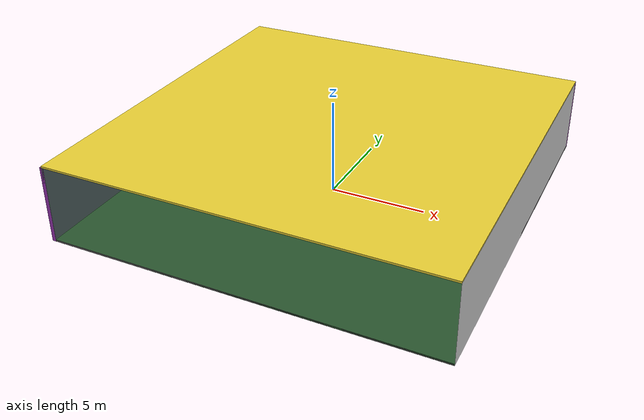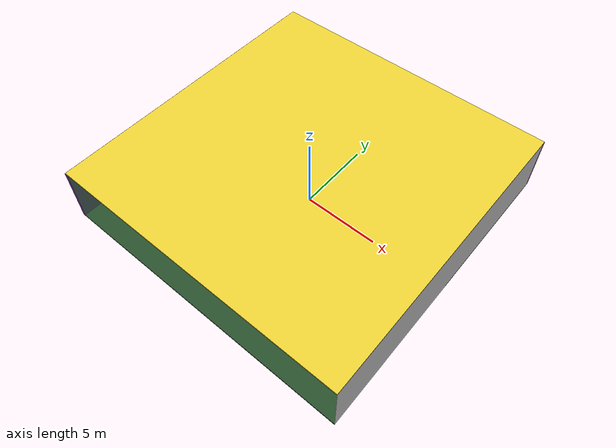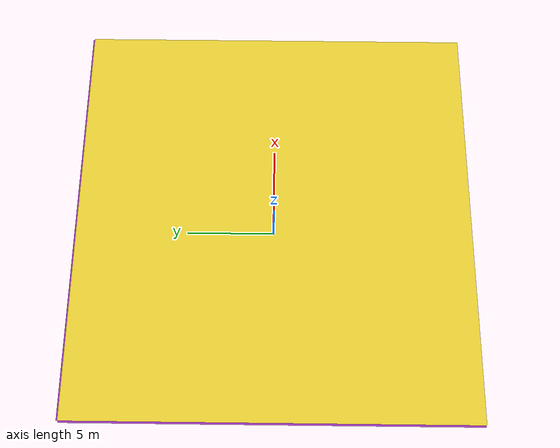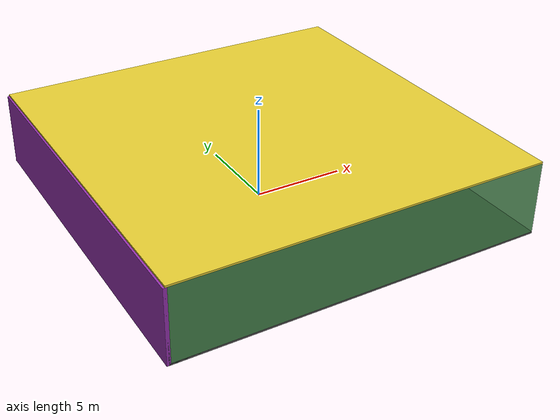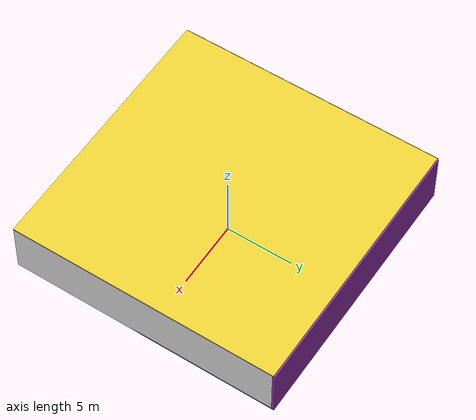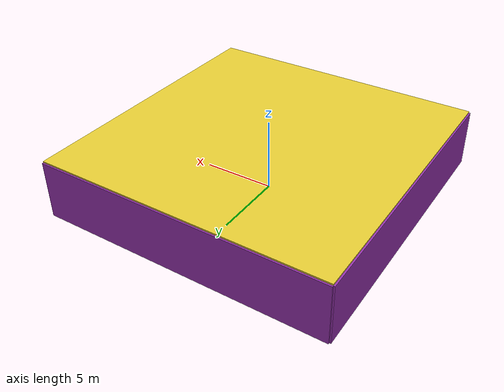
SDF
<sdf version="1.4">
 <world name="default">
  <physics type="ode">
   <max_step_size>0.001</max_step_size>
   <real_time_factor>1</real_time_factor>
   <real_time_update_rate>1000</real_time_update_rate>
   <gravity>0 0 -9.8</gravity>
  </physics>
  <scene><ambient>0.4 0.4 0.4 1</ambient><background>0.7 0.7 0.7 1</background><shadows>1</shadows></scene>
  <model name="Surrounding">
   <static>1</static>
   <link name="Ceiling">
    <collision name="Ceiling_Collision"><geometry><box><size>20 20 0.1</size></box></geometry></collision>
    <visual name="Ceiling_Visual">
     <geometry><box><size>20 20 0.1</size></box></geometry>
     <material>
      <script><uri>file://media/materials/scripts/gazebo.material</uri><name>Gazebo/ZincYellow</name></script>
     </material>
    </visual>
    <pose>0 0 4.05 0 0 0</pose>
   </link>
   <link name="Wall_South">
    <collision name="Wall_South_Collision">
     <geometry><box><size>20 0 4</size></box></geometry>
     <pose>0 0 2 0 -0 0</pose>
    </collision>
    <visual name="Wall_South_Visual">
     <pose>0 0 2 0 -0 0</pose>
     <geometry><box><size>20 0 4</size></box></geometry>
     <material>
      <script><uri>file://media/materials/scripts/gazebo.material</uri><name>Gazebo/GreenTransparent</name></script>
     </material>
    </visual>
    <velocity_decay><linear>0</linear><angular>0</angular></velocity_decay>
    <pose>0 -10 0 0 -0 0</pose>
   </link>
   <link name="Wall_East">
    <collision name="Wall_21_Collision">
     <geometry><box><size>20 0 4</size></box></geometry>
     <pose>0 0 2 0 -0 0</pose>
    </collision>
    <visual name="Wall_21_Visual">
     <pose>0 0 2 0 -0 0</pose>
     <geometry><box><size>20 0 4</size></box></geometry>
     <material>
      <script><uri>file://media/materials/scripts/gazebo.material</uri><name>Gazebo/WhiteGlow</name></script>
     </material>
    </visual>
    <velocity_decay><linear>0</linear><angular>0</angular></velocity_decay>
    <pose>10 0 0 0 -0 1.5708</pose>
   </link>
   <link name="Wall_North">
    <collision name="Wall_22_Collision">
     <geometry><box><size>20 0.2 4</size></box></geometry>
     <pose>0 0 2 0 -0 0</pose>
    </collision>
    <visual name="Wall_22_Visual">
     <pose>0 0 2 0 -0 0</pose>
     <geometry><box><size>20 0.2 4</size></box></geometry>
     <material>
      <script><uri>file://media/materials/scripts/gazebo.material</uri><name>Gazebo/PurpleGlow</name></script>
     </material>
    </visual>
    <velocity_decay><linear>0</linear><angular>0</angular></velocity_decay>
    <pose>0 10 0 0 -0 0</pose>
   </link>
   <link name="Wall_West">
    <collision name="Wall_23_Collision">
     <geometry><box><size>20 0.2 4</size></box></geometry>
     <pose>0 0 2 0 -0 0</pose>
    </collision>
    <visual name="Wall_23_Visual">
     <pose>0 0 2 0 -0 0</pose>
     <geometry><box><size>20 0.2 4</size></box></geometry>
     <material>
      <script><uri>file://media/materials/scripts/gazebo.material</uri><name>Gazebo/Purple</name></script>
     </material>
    </visual>
    <velocity_decay><linear>0</linear><angular>0</angular></velocity_decay>
    <pose>-10 0 0 0 0 -1.5708</pose>
   </link>
   <link name="Ground_link">
    <collision name="collision">
     <pose>0 0 .05 0 -0 0</pose>
     <geometry><box><size>20 20 0.1</size></box></geometry>
    </collision>
    <visual name="visual">
     <pose>0 0 .05 0 -0 0</pose>
     <geometry><box><size>20 20 0.1</size></box></geometry>
     <material>
      <script><uri>file://media/materials/scripts/gazebo.material</uri><name>Gazebo/Road</name></script>
     </material>
    </visual>
   </link>
   <static>1</static>
  </model>
  <spherical_coordinates>
   <surface_model>EARTH_WGS84</surface_model>
   <latitude_deg>0</latitude_deg>
   <longitude_deg>0</longitude_deg>
   <elevation>0</elevation>
   <heading_deg>0</heading_deg>
  </spherical_coordinates>
  <light name="lightball_0" type="diffuse">
   <diffuse>0.8 0.8 0.8 1</diffuse>
   <specular>0.2 0.2 0.2 1</specular>
   <attenuation>
    <range>100</range>
    <constant>0.7</constant>
    <linear>0.01</linear>
    <quadratic>0.001</quadratic>
   </attenuation>
   <direction>-0.5 0.1 -0.9</direction>
   <pose>-6.25433807662 -6.25753176828 0.636501359311 0 0 0</pose>
  </light>
  <light name="lightball_1" type="diffuse">
   <diffuse>0.8 0.8 0.8 1</diffuse>
   <specular>0.2 0.2 0.2 1</specular>
   <attenuation>
    <range>100</range>
    <constant>0.7</constant>
    <linear>0.01</linear>
    <quadratic>0.001</quadratic>
   </attenuation>
   <direction>-0.5 0.1 -0.9</direction>
   <pose>-9.99496470921 -4.78072355647 2.22445791177 0 0 0</pose>
  </light>
  <light name="lightball_2" type="diffuse">
   <diffuse>0.8 0.8 0.8 1</diffuse>
   <specular>0.2 0.2 0.2 1</specular>
   <attenuation>
    <range>100</range>
    <constant>0.7</constant>
    <linear>0.01</linear>
    <quadratic>0.001</quadratic>
   </attenuation>
   <direction>-0.5 0.1 -0.9</direction>
   <pose>3.60285650029 -0.934249488579 1.97295977121 0 0 0</pose>
  </light>
  <light name="lightball_3" type="diffuse">
   <diffuse>0.8 0.8 0.8 1</diffuse>
   <specular>0.2 0.2 0.2 1</specular>
   <attenuation>
    <range>100</range>
    <constant>0.7</constant>
    <linear>0.01</linear>
    <quadratic>0.001</quadratic>
   </attenuation>
   <direction>-0.5 0.1 -0.9</direction>
   <pose>4.18847567463 6.9611093428 1.99823473967 0 0 0</pose>
  </light>
  <light name="lightball_4" type="diffuse">
   <diffuse>0.8 0.8 0.8 1</diffuse>
   <specular>0.2 0.2 0.2 1</specular>
   <attenuation>
    <range>100</range>
    <constant>0.7</constant>
    <linear>0.01</linear>
    <quadratic>0.001</quadratic>
   </attenuation>
   <direction>-0.5 0.1 -0.9</direction>
   <pose>-8.21058104041 -4.28947113665 3.32392596779 0 0 0</pose>
  </light>
  <light name="lightball_5" type="diffuse">
   <diffuse>0.8 0.8 0.8 1</diffuse>
   <specular>0.2 0.2 0.2 1</specular>
   <attenuation>
    <range>100</range>
    <constant>0.7</constant>
    <linear>0.01</linear>
    <quadratic>0.001</quadratic>
   </attenuation>
   <direction>-0.5 0.1 -0.9</direction>
   <pose>-6.0658470989 -9.52004025673 2.61829722733 0 0 0</pose>
  </light>
  <include>
   <uri>model://construction_cone</uri>
   <pose>-7.11692134142 2.04396947606 0 0 0 3.0571530507</pose>
  </include>
  <include>
   <uri>model://textured_shapes</uri>
   <pose>0.959076312177 7.89561924067 0 0 0 1.64183876772</pose>
  </include>
  <include>
   <uri>model://robocup_3Dsim_goal</uri>
   <pose>7.59353130099 -4.42428617568 0 0 0 2.04345491446</pose>
  </include>
 </world>
</sdf>

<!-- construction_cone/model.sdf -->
<sdf version="1.5">
  <model name="Construction Cone">
    <link name="link">
      <collision name="collision">
        <geometry>
          <mesh>
            <scale>10 10 10</scale>
            <uri>file://isr-testbed/construction_cone/meshes/construction_cone.dae</uri>
          </mesh>
        </geometry>
      </collision>
      <visual name="visual">
        <geometry>
          <mesh>
            <scale>10 10 10</scale>
            <uri>file://isr-testbed/construction_cone/meshes/construction_cone.dae</uri>
          </mesh>
        </geometry>
      </visual>
    </link>
  </model>
</sdf>

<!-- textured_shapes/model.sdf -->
<sdf version="1.6">
  <model name="textured_shapes">
    <pose>0 0 0.5 0 0 0</pose>
    <link name="box">
      <pose>0 -1.5 0 0 0 0</pose>
      <collision name="collision">
        <geometry>
          <box>
            <size>1 1 1</size>
          </box>
        </geometry>
      </collision>
      <visual name="visual">
        <geometry>
          <box>
            <size>1 1 1</size>
          </box>
        </geometry>
        <material>
          <script>
            <uri>model://../model_source/models/textured_shapes/materials/scripts</uri>
            <uri>model://../model_source/models/textured_shapes/materials/textures</uri>
            <name>TexturedShape/Squares</name>
          </script>
        </material>
      </visual>
    </link>
    <link name="sphere">
      <collision name="collision">
        <geometry>
          <sphere>
            <radius>0.5</radius>
          </sphere>
        </geometry>
      </collision>
      <visual name="visual">
        <geometry>
          <sphere>
            <radius>0.5</radius>
          </sphere>
        </geometry>
        <material>
          <script>
            <uri>model://../model_source/models/textured_shapes/materials/scripts</uri>
            <uri>model://../model_source/models/textured_shapes/materials/textures</uri>
            <name>TexturedShape/Squares</name>
          </script>
        </material>
      </visual>
    </link>
    <link name="cylinder">
      <pose>0 1.5 0 0 0 0</pose>
      <collision name="collision">
        <geometry>
          <cylinder>
            <radius>0.5</radius>
            <length>1</length>
          </cylinder>
        </geometry>
      </collision>
      <visual name="visual">
        <geometry>
          <cylinder>
            <radius>0.5</radius>
            <length>1</length>
          </cylinder>
        </geometry>
        <material>
          <script>
            <uri>model://../model_source/models/textured_shapes/materials/scripts</uri>
            <uri>model://../model_source/models/textured_shapes/materials/textures</uri>
            <name>TexturedShape/Squares</name>
          </script>
        </material>
      </visual>
    </link>
  </model>
</sdf>

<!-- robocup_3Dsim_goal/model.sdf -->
<sdf version="1.5">
  <model name="robocup_3d_goal">
    <static>true</static>
    <link name="left_post">
      <pose>0 1.05 0.45 0 0 0</pose>
      <collision name="collision">
        <geometry>
          <cylinder>
            <radius>0.05</radius>
            <length>0.9</length>
          </cylinder>
        </geometry>
      </collision>
      <visual name="visual">
        <geometry>
          <cylinder>
            <radius>0.05</radius>
            <length>0.9</length>
          </cylinder>
        </geometry>
        <material>
          <script>
            <uri>file://media/materials/scripts/gazebo.material</uri>
            <name>Gazebo/ZincYellow</name>
          </script>
        </material>
      </visual>
    </link>
    <link name="left_support_horiz_lower">
      <pose>0.30 1.05 0.01 0 0 0</pose>
      <collision name="collision">
        <geometry>
          <box>
            <size>0.50 0.02 0.02</size>
          </box>
        </geometry>
      </collision>
      <visual name="visual">
        <geometry>
          <box>
            <size>0.50 0.02 0.02</size>
          </box>
        </geometry>
        <material>
          <script>
            <uri>file://media/materials/scripts/gazebo.material</uri>
            <name>Gazebo/White</name>
          </script>
        </material>
      </visual>
    </link>
    <link name="left_support_horiz_upper">
      <pose>0.30 1.05 0.79 0 0 0</pose>
      <collision name="collision">
        <geometry>
          <box>
            <size>0.50 0.02 0.02</size>
          </box>
        </geometry>
      </collision>
      <visual name="visual">
        <geometry>
          <box>
            <size>0.50 0.02 0.02</size>
          </box>
        </geometry>
        <material>
          <script>
            <uri>file://media/materials/scripts/gazebo.material</uri>
            <name>Gazebo/White</name>
          </script>
        </material>
      </visual>
    </link>
    <link name="left_support_vertical">
      <pose>0.56 1.05 0.4 0 1.5708 0</pose>
      <collision name="collision">
        <geometry>
          <box>
            <size>0.80 0.02 0.02</size>
          </box>
        </geometry>
      </collision>
      <visual name="visual">
        <geometry>
          <box>
            <size>0.80 0.02 0.02</size>
          </box>
        </geometry>
        <material>
          <script>
            <uri>file://media/materials/scripts/gazebo.material</uri>
            <name>Gazebo/White</name>
          </script>
        </material>
      </visual>
    </link>
    <link name="right_support_horiz_lower">
      <pose>0.30 -1.05 0.01 0 0 0</pose>
      <collision name="collision">
        <geometry>
          <box>
            <size>0.50 0.02 0.02</size>
          </box>
        </geometry>
      </collision>
      <visual name="visual">
        <geometry>
          <box>
            <size>0.50 0.02 0.02</size>
          </box>
        </geometry>
        <material>
          <script>
            <uri>file://media/materials/scripts/gazebo.material</uri>
            <name>Gazebo/White</name>
          </script>
        </material>
      </visual>
    </link>
    <link name="right_support_horiz_upper">
      <pose>0.30 -1.05 0.79 0 0 0</pose>
      <collision name="collision">
        <geometry>
          <box>
            <size>0.50 0.02 0.02</size>
          </box>
        </geometry>
      </collision>
      <visual name="visual">
        <geometry>
          <box>
            <size>0.50 0.02 0.02</size>
          </box>
        </geometry>
        <material>
          <script>
            <uri>file://media/materials/scripts/gazebo.material</uri>
            <name>Gazebo/White</name>
          </script>
        </material>
      </visual>
    </link>
    <link name="right_support_vertical">
      <pose>0.56 -1.05 0.4 0 1.5708 0</pose>
      <collision name="collision">
        <geometry>
          <box>
            <size>0.80 0.02 0.02</size>
          </box>
        </geometry>
      </collision>
      <visual name="visual">
        <geometry>
          <box>
            <size>0.80 0.02 0.02</size>
          </box>
        </geometry>
        <material>
          <script>
            <uri>file://media/materials/scripts/gazebo.material</uri>
            <name>Gazebo/White</name>
          </script>
        </material>
      </visual>
    </link>
    <link name="center_support_horiz_lower">
      <pose>0.56 0 0.01 0 1.5708 0</pose>
      <collision name="collision">
        <geometry>
          <box>
            <size>0.02 2.08 0.02</size>
          </box>
        </geometry>
      </collision>
      <visual name="visual">
        <geometry>
          <box>
            <size>0.02 2.08 0.02</size>
          </box>
        </geometry>
        <material>
          <script>
            <uri>file://media/materials/scripts/gazebo.material</uri>
            <name>Gazebo/White</name>
          </script>
        </material>
      </visual>
    </link>
    <link name="center_support_horiz_upper">
      <pose>0.56 0 0.79 0 1.5708 0</pose>
      <collision name="collision">
        <geometry>
          <box>
            <size>0.02 2.08 0.02</size>
          </box>
        </geometry>
      </collision>
      <visual name="visual">
        <geometry>
          <box>
            <size>0.02 2.08 0.02</size>
          </box>
        </geometry>
        <material>
          <script>
            <uri>file://media/materials/scripts/gazebo.material</uri>
            <name>Gazebo/White</name>
          </script>
        </material>
      </visual>
    </link>
    <link name="right_post">
      <pose>0 -1.05 0.45 0 0 0</pose>
      <collision name="collision">
        <geometry>
          <cylinder>
            <radius>0.05</radius>
            <length>0.9</length>
          </cylinder>
        </geometry>
      </collision>
      <visual name="visual">
        <geometry>
          <cylinder>
            <radius>0.05</radius>
            <length>0.9</length>
          </cylinder>
        </geometry>
        <material>
          <script>
            <uri>file://media/materials/scripts/gazebo.material</uri>
            <name>Gazebo/ZincYellow</name>
          </script>
        </material>
      </visual>
    </link>
    <link name="crossbar">
      <pose>0 0 0.85 1.57 1.57 0</pose>
      <collision name="collision">
        <geometry>
          <cylinder>
            <radius>0.05</radius>
            <length>2.0</length>
          </cylinder>
        </geometry>
      </collision>
      <visual name="visual">
        <geometry>
          <cylinder>
            <radius>0.05</radius>
            <length>2.0</length>
          </cylinder>
        </geometry>
        <material>
          <script>
            <uri>file://media/materials/scripts/gazebo.material</uri>
            <name>Gazebo/ZincYellow</name>
          </script>
        </material>
      </visual>
    </link>
    <link name="center_net">
      <pose>0.56 0 0.40 0 0 0</pose>
      <collision name="collision">
        <geometry>
          <box>
            <size>0.01 2.1 0.80</size>
          </box>
        </geometry>
      </collision>
      <visual name="visual">
        <geometry>
          <box>
            <size>0.01 2.1 0.80</size>
          </box>
        </geometry>
        <material>
          <script>
            <uri>model://../model_source/models/robocup09_spl_field/materials/scripts/</uri>
            <uri>model://../model_source/models/robocup09_spl_field/materials/textures/</uri>
            <name>RoboCup/Net</name>
          </script>
        </material>
      </visual>
    </link>
    <link name="left_net">
      <pose>0.30 1.05 0.40 0 0 0</pose>
      <collision name="collision">
        <geometry>
          <box>
            <size>0.50 0.01 0.76</size>
          </box>
        </geometry>
      </collision>
      <visual name="visual">
        <geometry>
          <box>
            <size>0.50 0.01 0.76</size>
          </box>
        </geometry>
        <material>
          <script>
            <uri>model://../model_source/models/robocup09_spl_field/materials/scripts/</uri>
            <uri>model://../model_source/models/robocup09_spl_field/materials/textures/</uri>
            <name>RoboCup/Net</name>
          </script>
        </material>
      </visual>
    </link>
    <link name="right_net">
      <pose>0.30 -1.05 0.40 0 0 0</pose>
      <collision name="collision">
        <geometry>
          <box>
            <size>0.50 0.01 0.76</size>
          </box>
        </geometry>
      </collision>
      <visual name="visual">
        <geometry>
          <box>
            <size>0.50 0.01 0.76</size>
          </box>
        </geometry>
        <material>
          <script>
            <uri>model://../model_source/models/robocup09_spl_field/materials/scripts/</uri>
            <uri>model://../model_source/models/robocup09_spl_field/materials/textures/</uri>
            <name>RoboCup/Net</name>
          </script>
        </material>
      </visual>
    </link>
  </model>
</sdf>
